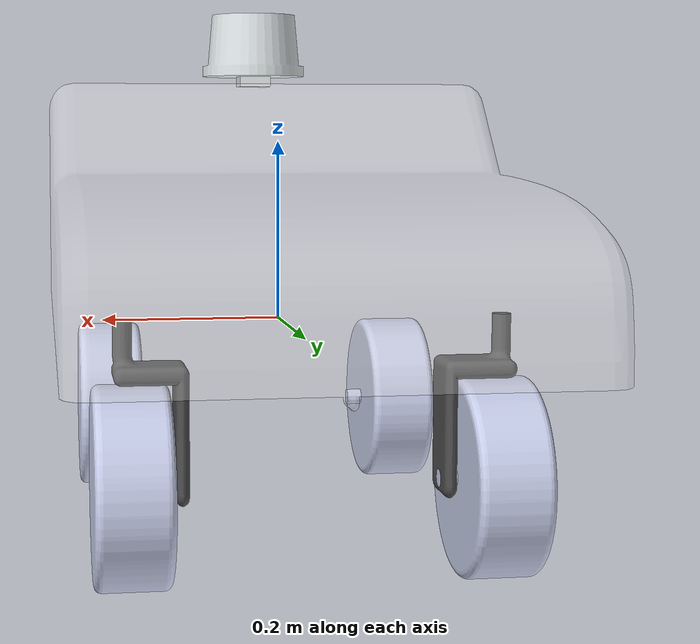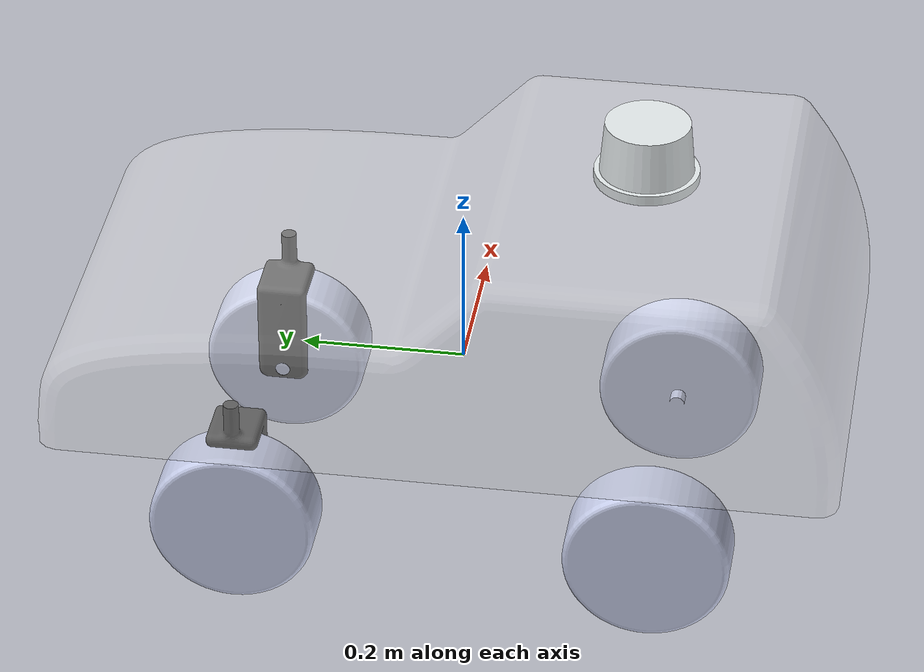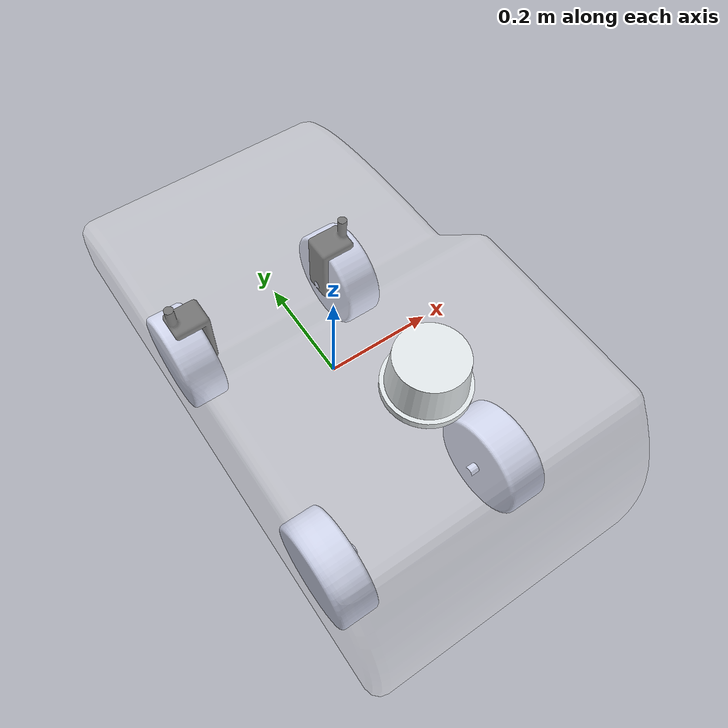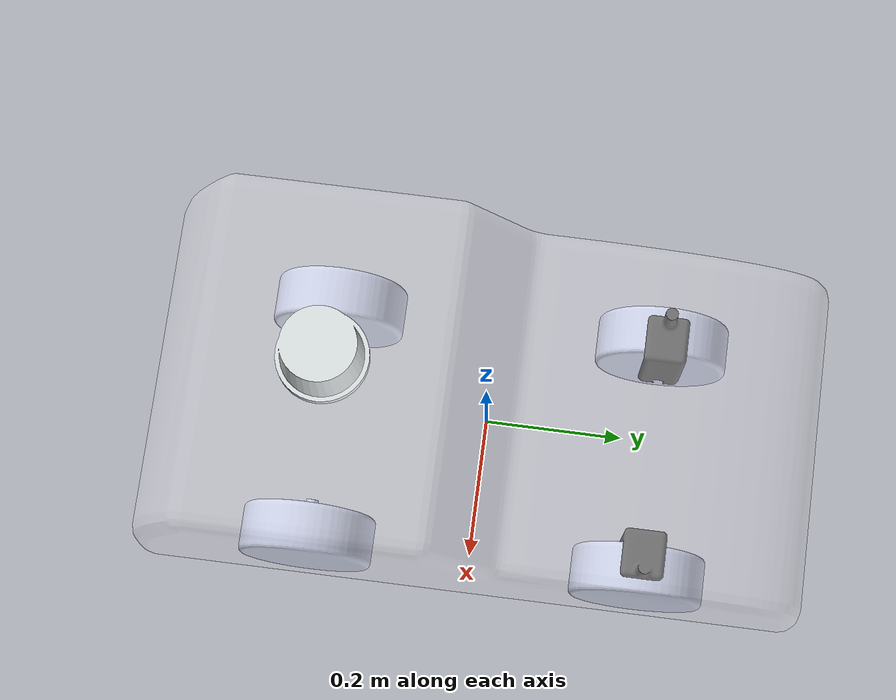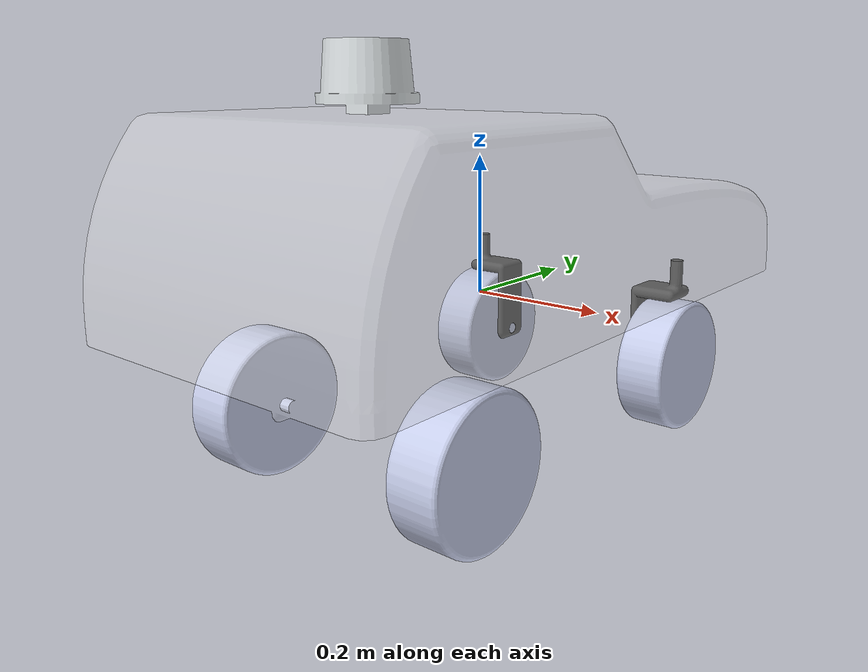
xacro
<?xml version="1.0" ?>
<robot
  name="midterm_robot_description" xmlns:xacro="http://ros.org/wiki/xacro">
  <link name="dummy_link"></link>
  <link
    name="base_link">
    <inertial>
      <origin
        xyz="-5.96578025912805E-07 -0.0566644666611726 0.101265397224701"
        rpy="0 0 0" />
      <mass
        value="104.471708794033" />
      <inertia
        ixx="7.30893365724678"
        ixy="-5.20969359127203E-05"
        ixz="-5.21813429732781E-06"
        iyy="2.63901134435678"
        iyz="0.481061243650602"
        izz="9.11952423401843" />
    </inertial>
    <visual>
      <origin
        xyz="0 0 0"
        rpy="0 0 0" />
      <geometry>
        <mesh
          filename="package://midterm_robot_description/meshes/base_link.STL" />
      </geometry>
      <material
        name="">
        <color
          rgba="1 1 1 0.25" />
      </material>
    </visual>
    <collision>
      <origin
        xyz="0 0 0"
        rpy="0 0 0" />
      <geometry>
        <mesh
          filename="package://midterm_robot_description/meshes/base_link.STL" />
      </geometry>
    </collision>
  </link>
  <joint name="dummy_joint" type="fixed">
      <origin rpy="0 0 0" xyz="0 0 0" />
      <parent link="dummy_link"/>
      <child link="base_link"/>
  </joint>
  <link
    name="left_steering_link">
    <inertial>
      <origin
        xyz="-0.0398373876528383 4.33691308421302E-08 0.083320897869164"
        rpy="0 0 0" />
      <mass
        value="0.17526052358323" />
      <inertia
        ixx="0.000377493361412376"
        ixy="-1.48134288444236E-10"
        ixz="0.000113906716338393"
        iyy="0.000419307022268235"
        iyz="-3.90228596048985E-10"
        izz="0.000141971952913803" />
    </inertial>
    <visual>
      <origin
        xyz="0 0 0"
        rpy="0 0 0" />
      <geometry>
        <mesh
          filename="package://midterm_robot_description/meshes/left_steering_link.STL" />
      </geometry>
      <material
        name="">
        <color
          rgba="0.298039215686275 0.298039215686275 0.298039215686275 1" />
      </material>
    </visual>
    <collision>
      <origin
        xyz="0 0 0"
        rpy="0 0 0" />
      <geometry>
        <mesh
          filename="package://midterm_robot_description/meshes/left_steering_link.STL" />
      </geometry>
    </collision>
  </link>
  <joint
    name="left_steering_joint"
    type="revolute">
    <origin
      xyz="-0.1905 0.254 0.03048"
      rpy="3.1416 0 -3.1416" />
    <parent
      link="base_link" />
    <child
      link="left_steering_link" />
    <axis
      xyz="0 0 -1" />
    <limit
      lower="-0.785"
      upper="0.785"
      effort="0"
      velocity="0" />
  </joint>
  <link
    name="left_front_wheel_link">
    <inertial>
      <origin
        xyz="5.55111512312578E-17 2.77555756156289E-17 0.0557832196252186"
        rpy="0 0 0" />
      <mass
        value="2.46053611278377" />
      <inertia
        ixx="0.00748531651970692"
        ixy="2.13924939372299E-19"
        ixz="7.86223991139149E-19"
        iyy="0.00748531651970692"
        iyz="-1.62136620501587E-20"
        izz="0.0125981233575879" />
    </inertial>
    <visual>
      <origin
        xyz="0 0 0"
        rpy="0 0 0" />
      <geometry>
        <mesh
          filename="package://midterm_robot_description/meshes/left_front_wheel_link.STL" />
      </geometry>
      <material
        name="">
        <color
          rgba="0.792156862745098 0.819607843137255 0.933333333333333 1" />
      </material>
    </visual>
    <collision>
      <origin
        xyz="0 0 0"
        rpy="0 0 0" />
      <geometry>
        <mesh
          filename="package://midterm_robot_description/meshes/left_front_wheel_link.STL" />
      </geometry>
    </collision>
  </link>
  <joint
    name="left_front_wheel_joint"
    type="continuous">
    <origin
      xyz="-0.0635000000000002 0 0.166370000000001"
      rpy="1.5707963267949 0 1.5707963267949" />
    <parent
      link="left_steering_link" />
    <child
      link="left_front_wheel_link" />
    <axis
      xyz="0 0 -1" />
  </joint>
  <link
    name="right_steering_link">
    <inertial>
      <origin
        xyz="0.0398373742433879 -4.42017236701453E-08 0.0833208894345257"
        rpy="0 0 0" />
      <mass
        value="0.175260582348895" />
      <inertia
        ixx="0.000377493403401725"
        ixy="-1.54257659109881E-10"
        ixz="-0.000113906778958555"
        iyy="0.000419307160762202"
        iyz="3.86334798155676E-10"
        izz="0.00014197205014631" />
    </inertial>
    <visual>
      <origin
        xyz="0 0 0"
        rpy="0 0 0" />
      <geometry>
        <mesh
          filename="package://midterm_robot_description/meshes/right_steering_link.STL" />
      </geometry>
      <material
        name="">
        <color
          rgba="0.298039215686275 0.298039215686275 0.298039215686275 1" />
      </material>
    </visual>
    <collision>
      <origin
        xyz="0 0 0"
        rpy="0 0 0" />
      <geometry>
        <mesh
          filename="package://midterm_robot_description/meshes/right_steering_link.STL" />
      </geometry>
    </collision>
  </link>
  <joint
    name="right_steering_joint"
    type="revolute">
    <origin
      xyz="0.1905 0.254 0.03048"
      rpy="3.1416 0 -3.1416" />
    <parent
      link="base_link" />
    <child
      link="right_steering_link" />
    <axis
      xyz="0 0 -1" />
    <limit
      lower="-0.785"
      upper="0.785"
      effort="0"
      velocity="0" />
  </joint>
  <link
    name="right_front_wheel_link">
    <inertial>
      <origin
        xyz="0 2.77555756156289E-17 0.0557832196252186"
        rpy="0 0 0" />
      <mass
        value="2.46053611278377" />
      <inertia
        ixx="0.00748531651970692"
        ixy="1.22690389925894E-18"
        ixz="3.97481916200354E-20"
        iyy="0.00748531651970691"
        iyz="-1.8558590335222E-19"
        izz="0.0125981233575879" />
    </inertial>
    <visual>
      <origin
        xyz="0 0 0"
        rpy="0 0 0" />
      <geometry>
        <mesh
          filename="package://midterm_robot_description/meshes/right_front_wheel_link.STL" />
      </geometry>
      <material
        name="">
        <color
          rgba="0.792156862745098 0.819607843137255 0.933333333333333 1" />
      </material>
    </visual>
    <collision>
      <origin
        xyz="0 0 0"
        rpy="0 0 0" />
      <geometry>
        <mesh
          filename="package://midterm_robot_description/meshes/right_front_wheel_link.STL" />
      </geometry>
    </collision>
  </link>
  <joint
    name="right_front_wheel_joint"
    type="continuous">
    <origin
      xyz="0.0635 0 0.16637"
      rpy="-1.5707963267949 0 1.5707963267949" />
    <parent
      link="right_steering_link" />
    <child
      link="right_front_wheel_link" />
    <axis
      xyz="0 0 -1" />
  </joint>
  <link
    name="left_rear_wheel_link">
    <inertial>
      <origin
        xyz="0 2.77555756156289E-17 0.0557832196252186"
        rpy="0 0 0" />
      <mass
        value="2.46053611278377" />
      <inertia
        ixx="0.00748531651970692"
        ixy="8.20034013045851E-19"
        ixz="-3.80778330048891E-19"
        iyy="0.00748531651970692"
        iyz="-3.37554900665913E-19"
        izz="0.0125981233575879" />
    </inertial>
    <visual>
      <origin
        xyz="0 0 0"
        rpy="0 0 0" />
      <geometry>
        <mesh
          filename="package://midterm_robot_description/meshes/left_rear_wheel_link.STL" />
      </geometry>
      <material
        name="">
        <color
          rgba="0.792156862745098 0.819607843137255 0.933333333333333 1" />
      </material>
    </visual>
    <collision>
      <origin
        xyz="0 0 0"
        rpy="0 0 0" />
      <geometry>
        <mesh
          filename="package://midterm_robot_description/meshes/left_rear_wheel_link.STL" />
      </geometry>
    </collision>
  </link>
  <joint
    name="left_rear_wheel_joint"
    type="continuous">
    <origin
      xyz="-0.127 -0.254 -0.13589"
      rpy="-1.5708 0 1.5708" />
    <parent
      link="base_link" />
    <child
      link="left_rear_wheel_link" />
    <axis
      xyz="0 0 -1" />
  </joint>
  <link
    name="right_rear_wheel_link">
    <inertial>
      <origin
        xyz="5.55111512312578E-17 -2.77555756156289E-17 0.0557832196252186"
        rpy="0 0 0" />
      <mass
        value="2.46053611278377" />
      <inertia
        ixx="0.00748531651970692"
        ixy="1.69625504867925E-19"
        ixz="-3.0253685646146E-20"
        iyy="0.00748531651970692"
        iyz="-5.07190069028816E-21"
        izz="0.0125981233575879" />
    </inertial>
    <visual>
      <origin
        xyz="0 0 0"
        rpy="0 0 0" />
      <geometry>
        <mesh
          filename="package://midterm_robot_description/meshes/right_rear_wheel_link.STL" />
      </geometry>
      <material
        name="">
        <color
          rgba="0.792156862745098 0.819607843137255 0.933333333333333 1" />
      </material>
    </visual>
    <collision>
      <origin
        xyz="0 0 0"
        rpy="0 0 0" />
      <geometry>
        <mesh
          filename="package://midterm_robot_description/meshes/right_rear_wheel_link.STL" />
      </geometry>
    </collision>
  </link>
  <joint
    name="right_rear_wheel_joint"
    type="continuous">
    <origin
      xyz="0.127 -0.254 -0.13589"
      rpy="1.5708 0 1.5708" />
    <parent
      link="base_link" />
    <child
      link="right_rear_wheel_link" />
    <axis
      xyz="0 0 -1" />
  </joint>
  <link
    name="laser_link">
    <inertial>
      <origin
        xyz="0 -0.0407897812677035 5.07181334788019E-17"
        rpy="0 0 0" />
      <mass
        value="0.769591765374818" />
      <inertia
        ixx="0.00100745464475502"
        ixy="6.56443604550967E-23"
        ixz="-1.42114252279359E-21"
        iyy="0.00120513625051318"
        iyz="3.88121142942188E-20"
        izz="0.00100745464475502" />
    </inertial>
    <visual>
      <origin
        xyz="0 0 0"
        rpy="0 0 0" />
      <geometry>
        <mesh
          filename="package://midterm_robot_description/meshes/laser_link.STL" />
      </geometry>
      <material
        name="">
        <color
          rgba="0.898039215686275 0.92156862745098 0.929411764705882 1" />
      </material>
    </visual>
    <collision>
      <origin
        xyz="0 0 0"
        rpy="0 0 0" />
      <geometry>
        <mesh
          filename="package://midterm_robot_description/meshes/laser_link.STL" />
      </geometry>
    </collision>
  </link>
  <joint
    name="laser_link_joint"
    type="fixed">
    <origin
      xyz="0 -0.220669211238151 0.27305"
      rpy="-1.5707963267949 0 -1.5707963267949" />
    <parent
      link="base_link" />
    <child
      link="laser_link" />
    <axis
      xyz="0 0 0" />
  </joint>

  <link
    name="laser_origin">
  </link>

  <joint
    name="laser_origin_joint"
    type="fixed">
    <origin
      xyz="0.0 -0.08 0.0"
      rpy="1.5707 0 0.0" />
    <parent
      link="laser_link" />
    <child
      link="laser_origin" />
    <axis
      xyz="0 0 0" />
  </joint>

  <ros2_control name="GazeboSystem" type="system">
    <hardware>
        <plugin>gazebo_ros2_control/GazeboSystem</plugin>
    </hardware>

    <joint name="right_front_wheel_joint">
        <command_interface name="velocity">
            <param name="min">-1000.0</param>
            <param name="max">1000.0</param>
        </command_interface>
        <state_interface name="position"/>
        <state_interface name="velocity"/>
    </joint>

     <joint name="left_front_wheel_joint">
        <command_interface name="velocity">
            <param name="min">-1000.0</param>
            <param name="max">1000.0</param>
        </command_interface>
        <state_interface name="position"/>
        <state_interface name="velocity"/>
    </joint>

    <joint name="right_rear_wheel_joint">
        <command_interface name="velocity">
            <param name="min">-1000.0</param>
            <param name="max">1000.0</param>
        </command_interface>
        <state_interface name="position"/>
        <state_interface name="velocity"/>
    </joint>

     <joint name="left_rear_wheel_joint">
        <command_interface name="velocity">
            <param name="min">-1000.0</param>
            <param name="max">1000.0</param>
        </command_interface>
        <state_interface name="position"/>
        <state_interface name="velocity"/>
    </joint>

    <joint name="left_steering_joint">
        <command_interface name="position">
            <param name="min">-0.785</param>
            <param name="max">0.785</param>
        </command_interface>
        <state_interface name="position"/>
        <state_interface name="velocity"/>
    </joint>

    <joint name="right_steering_joint">
        <command_interface name="position">
            <param name="min">-0.785</param>
            <param name="max">0.785</param>
        </command_interface>
        <state_interface name="position"/>
        <state_interface name="velocity"/>
    </joint>
  </ros2_control>

  <gazebo>
      <plugin filename="libgazebo_ros2_control.so" name="gazebo_ros2_control">
          <robot_param>robot_description</robot_param>
          <robot_param_node>robot_state_publisher</robot_param_node>
          <parameters>$(find midterm_robot_description)/config/control.yaml</parameters>
      </plugin>
  </gazebo>

  <gazebo reference="laser_origin">
    <sensor name="lidar" type="ray">
      <pose>0.0 0.2 0.1 0 0 1.5707</pose>
      <always_on>true</always_on>
      <visualize>true</visualize>
      <update_rate>5</update_rate>
      <ray>
        <scan>
          <horizontal>
            <samples>360</samples>
            <resolution>1.00000</resolution>
            <min_angle>0.000000</min_angle>
            <max_angle>6.280000</max_angle>
          </horizontal>
        </scan>
        <range>
          <min>0.120000</min>
          <max>3.5</max>
          <resolution>0.015000</resolution>
        </range>
        <noise>
          <type>gaussian</type>
          <mean>0.0</mean>
          <stddev>0.01</stddev>
        </noise>
      </ray>
      <plugin name="scan" filename="libgazebo_ros_ray_sensor.so">
        <ros>
          <remapping>~/out:=scan</remapping>
        </ros>
        <output_type>sensor_msgs/LaserScan</output_type>
        <frame_name>laser_origin</frame_name>
      </plugin>
    </sensor>
  </gazebo>
  <gazebo reference="base_link">
    <gravity>true</gravity>
    <sensor name="imu_sensor" type="imu">
      <always_on>true</always_on>
      <update_rate>100</update_rate>
      <visualize>true</visualize>
      <topic>imu_data</topic>
      <plugin filename="libgazebo_ros_imu_sensor.so" name="imu_plugin">
        <topicName>imu</topicName>
        <bodyName>base_link</bodyName>
        <updateRateHZ>10.0</updateRateHZ>
        <gaussianNoise>0.0</gaussianNoise>
        <xyzOffset>0 0 0</xyzOffset>
        <rpyOffset>0 0 0</rpyOffset>
        <frameName>base_link</frameName>
        <initialOrientationAsReference>false</initialOrientationAsReference>
      </plugin>
      <pose>0 0 0 0 0 0</pose>
    </sensor>
  </gazebo>
</robot>
